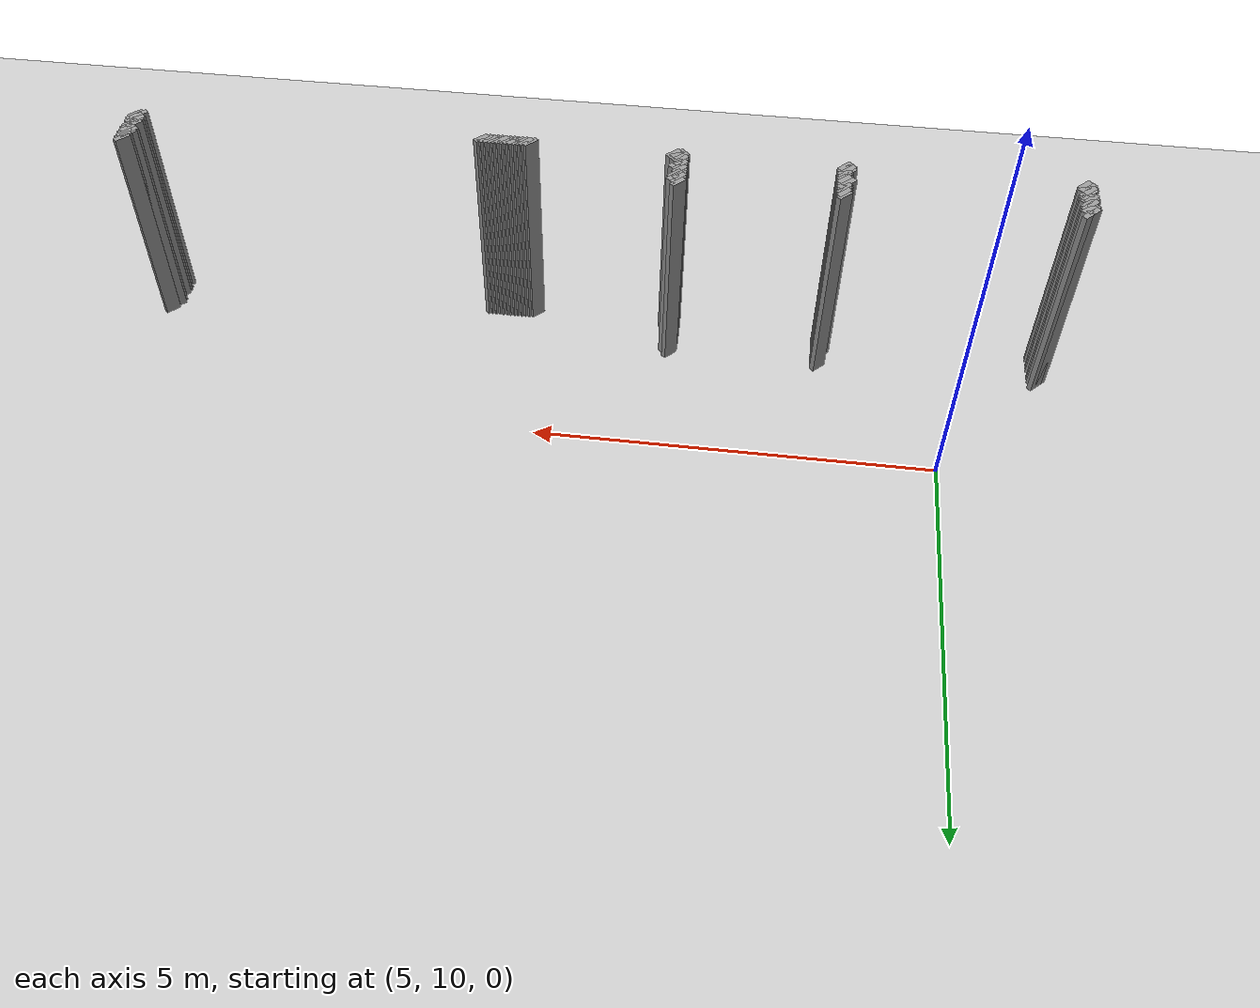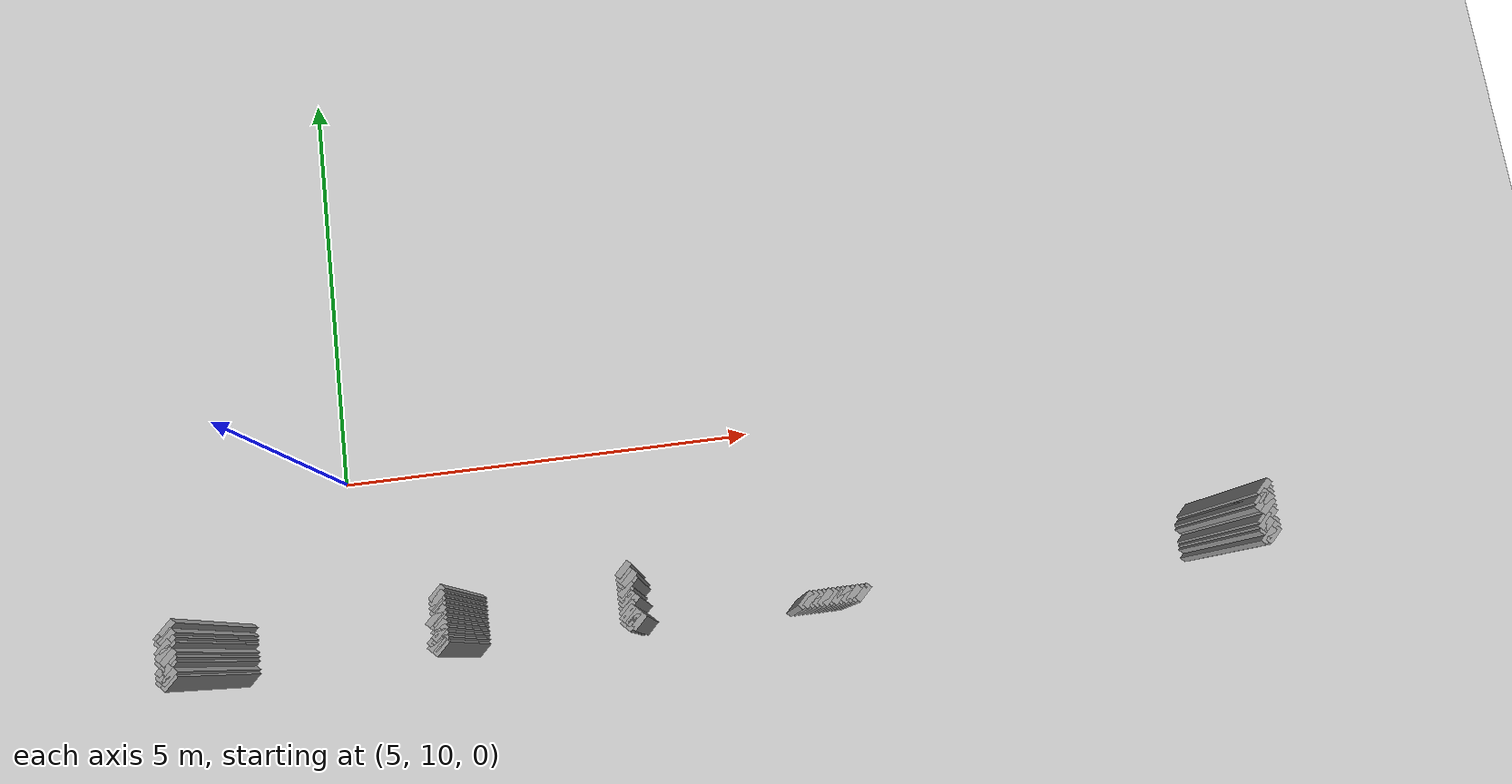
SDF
<sdf version="1.5">
 <world name="default">
  <include><uri>model://ground_plane</uri></include>
  <include><uri>model://sun</uri></include>
  <model name="grey_wall_1245">
   <static>1</static>
   <link name="link">
    <pose>3.7 8.35  1.4 0 0 -0.785398163397</pose>
    <collision name="collision"><geometry><box><size>0.0707106781187 .2  2.8</size></box></geometry></collision>
    <visual name="visual">
     <cast_shadows>0</cast_shadows>
     <geometry><box><size>0.0707106781187 .2  2.8</size></box></geometry>
     <material>
      <script>
       <uri>model://grey_wall/materials/scripts</uri>
       <uri>model://grey_wall/materials/textures</uri>
       <name>vrc/grey_wall</name>
      </script>
     </material>
    </visual>
   </link>
  </model>
  <model name="grey_wall_1246">
   <static>1</static>
   <link name="link">
    <pose>6.5 8.35  1.4 0 0 -0.785398163397</pose>
    <collision name="collision"><geometry><box><size>0.0707106781187 .2  2.8</size></box></geometry></collision>
    <visual name="visual">
     <cast_shadows>0</cast_shadows>
     <geometry><box><size>0.0707106781187 .2  2.8</size></box></geometry>
     <material>
      <script>
       <uri>model://grey_wall/materials/scripts</uri>
       <uri>model://grey_wall/materials/textures</uri>
       <name>vrc/grey_wall</name>
      </script>
     </material>
    </visual>
   </link>
  </model>
  <model name="grey_wall_1247">
   <static>1</static>
   <link name="link">
    <pose>8.45 8.35  1.4 0 0 -0.785398163397</pose>
    <collision name="collision"><geometry><box><size>0.0707106781187 .2  2.8</size></box></geometry></collision>
    <visual name="visual">
     <cast_shadows>0</cast_shadows>
     <geometry><box><size>0.0707106781187 .2  2.8</size></box></geometry>
     <material>
      <script>
       <uri>model://grey_wall/materials/scripts</uri>
       <uri>model://grey_wall/materials/textures</uri>
       <name>vrc/grey_wall</name>
      </script>
     </material>
    </visual>
   </link>
  </model>
  <model name="grey_wall_1248">
   <static>1</static>
   <link name="link">
    <pose>15.25 8.35  1.4 0 0 -0.785398163397</pose>
    <collision name="collision"><geometry><box><size>0.0707106781187 .2  2.8</size></box></geometry></collision>
    <visual name="visual">
     <cast_shadows>0</cast_shadows>
     <geometry><box><size>0.0707106781187 .2  2.8</size></box></geometry>
     <material>
      <script>
       <uri>model://grey_wall/materials/scripts</uri>
       <uri>model://grey_wall/materials/textures</uri>
       <name>vrc/grey_wall</name>
      </script>
     </material>
    </visual>
   </link>
  </model>
  <model name="grey_wall_1249">
   <static>1</static>
   <link name="link">
    <pose>3.65 8.3  1.4 0 0 -0.785398163397</pose>
    <collision name="collision"><geometry><box><size>0.0707106781187 .2  2.8</size></box></geometry></collision>
    <visual name="visual">
     <cast_shadows>0</cast_shadows>
     <geometry><box><size>0.0707106781187 .2  2.8</size></box></geometry>
     <material>
      <script>
       <uri>model://grey_wall/materials/scripts</uri>
       <uri>model://grey_wall/materials/textures</uri>
       <name>vrc/grey_wall</name>
      </script>
     </material>
    </visual>
   </link>
  </model>
  <model name="grey_wall_1250">
   <static>1</static>
   <link name="link">
    <pose>6.5 8.3  1.4 0 0 -0.785398163397</pose>
    <collision name="collision"><geometry><box><size>0.0707106781187 .2  2.8</size></box></geometry></collision>
    <visual name="visual">
     <cast_shadows>0</cast_shadows>
     <geometry><box><size>0.0707106781187 .2  2.8</size></box></geometry>
     <material>
      <script>
       <uri>model://grey_wall/materials/scripts</uri>
       <uri>model://grey_wall/materials/textures</uri>
       <name>vrc/grey_wall</name>
      </script>
     </material>
    </visual>
   </link>
  </model>
  <model name="grey_wall_1251">
   <static>1</static>
   <link name="link">
    <pose>8.45 8.3  1.4 0 0 -0.785398163397</pose>
    <collision name="collision"><geometry><box><size>0.0707106781187 .2  2.8</size></box></geometry></collision>
    <visual name="visual">
     <cast_shadows>0</cast_shadows>
     <geometry><box><size>0.0707106781187 .2  2.8</size></box></geometry>
     <material>
      <script>
       <uri>model://grey_wall/materials/scripts</uri>
       <uri>model://grey_wall/materials/textures</uri>
       <name>vrc/grey_wall</name>
      </script>
     </material>
    </visual>
   </link>
  </model>
  <model name="grey_wall_1252">
   <static>1</static>
   <link name="link">
    <pose>15.25 8.3  1.4 0 0 -0.785398163397</pose>
    <collision name="collision"><geometry><box><size>0.0707106781187 .2  2.8</size></box></geometry></collision>
    <visual name="visual">
     <cast_shadows>0</cast_shadows>
     <geometry><box><size>0.0707106781187 .2  2.8</size></box></geometry>
     <material>
      <script>
       <uri>model://grey_wall/materials/scripts</uri>
       <uri>model://grey_wall/materials/textures</uri>
       <name>vrc/grey_wall</name>
      </script>
     </material>
    </visual>
   </link>
  </model>
  <model name="grey_wall_1253">
   <static>1</static>
   <link name="link">
    <pose>3.65 8.25  1.4 0 0 -0.785398163397</pose>
    <collision name="collision"><geometry><box><size>0.0707106781187 .2  2.8</size></box></geometry></collision>
    <visual name="visual">
     <cast_shadows>0</cast_shadows>
     <geometry><box><size>0.0707106781187 .2  2.8</size></box></geometry>
     <material>
      <script>
       <uri>model://grey_wall/materials/scripts</uri>
       <uri>model://grey_wall/materials/textures</uri>
       <name>vrc/grey_wall</name>
      </script>
     </material>
    </visual>
   </link>
  </model>
  <model name="grey_wall_1254">
   <static>1</static>
   <link name="link">
    <pose>3.7 8.25  1.4 0 0 -0.785398163397</pose>
    <collision name="collision"><geometry><box><size>0.0707106781187 .2  2.8</size></box></geometry></collision>
    <visual name="visual">
     <cast_shadows>0</cast_shadows>
     <geometry><box><size>0.0707106781187 .2  2.8</size></box></geometry>
     <material>
      <script>
       <uri>model://grey_wall/materials/scripts</uri>
       <uri>model://grey_wall/materials/textures</uri>
       <name>vrc/grey_wall</name>
      </script>
     </material>
    </visual>
   </link>
  </model>
  <model name="grey_wall_1255">
   <static>1</static>
   <link name="link">
    <pose>6.5 8.25  1.4 0 0 -0.785398163397</pose>
    <collision name="collision"><geometry><box><size>0.0707106781187 .2  2.8</size></box></geometry></collision>
    <visual name="visual">
     <cast_shadows>0</cast_shadows>
     <geometry><box><size>0.0707106781187 .2  2.8</size></box></geometry>
     <material>
      <script>
       <uri>model://grey_wall/materials/scripts</uri>
       <uri>model://grey_wall/materials/textures</uri>
       <name>vrc/grey_wall</name>
      </script>
     </material>
    </visual>
   </link>
  </model>
  <model name="grey_wall_1256">
   <static>1</static>
   <link name="link">
    <pose>8.45 8.25  1.4 0 0 -0.785398163397</pose>
    <collision name="collision"><geometry><box><size>0.0707106781187 .2  2.8</size></box></geometry></collision>
    <visual name="visual">
     <cast_shadows>0</cast_shadows>
     <geometry><box><size>0.0707106781187 .2  2.8</size></box></geometry>
     <material>
      <script>
       <uri>model://grey_wall/materials/scripts</uri>
       <uri>model://grey_wall/materials/textures</uri>
       <name>vrc/grey_wall</name>
      </script>
     </material>
    </visual>
   </link>
  </model>
  <model name="grey_wall_1257">
   <static>1</static>
   <link name="link">
    <pose>8.5 8.25  1.4 0 0 -0.785398163397</pose>
    <collision name="collision"><geometry><box><size>0.0707106781187 .2  2.8</size></box></geometry></collision>
    <visual name="visual">
     <cast_shadows>0</cast_shadows>
     <geometry><box><size>0.0707106781187 .2  2.8</size></box></geometry>
     <material>
      <script>
       <uri>model://grey_wall/materials/scripts</uri>
       <uri>model://grey_wall/materials/textures</uri>
       <name>vrc/grey_wall</name>
      </script>
     </material>
    </visual>
   </link>
  </model>
  <model name="grey_wall_1258">
   <static>1</static>
   <link name="link">
    <pose>15.2 8.25  1.4 0 0 -0.785398163397</pose>
    <collision name="collision"><geometry><box><size>0.0707106781187 .2  2.8</size></box></geometry></collision>
    <visual name="visual">
     <cast_shadows>0</cast_shadows>
     <geometry><box><size>0.0707106781187 .2  2.8</size></box></geometry>
     <material>
      <script>
       <uri>model://grey_wall/materials/scripts</uri>
       <uri>model://grey_wall/materials/textures</uri>
       <name>vrc/grey_wall</name>
      </script>
     </material>
    </visual>
   </link>
  </model>
  <model name="grey_wall_1259">
   <static>1</static>
   <link name="link">
    <pose>15.25 8.25  1.4 0 0 -0.785398163397</pose>
    <collision name="collision"><geometry><box><size>0.0707106781187 .2  2.8</size></box></geometry></collision>
    <visual name="visual">
     <cast_shadows>0</cast_shadows>
     <geometry><box><size>0.0707106781187 .2  2.8</size></box></geometry>
     <material>
      <script>
       <uri>model://grey_wall/materials/scripts</uri>
       <uri>model://grey_wall/materials/textures</uri>
       <name>vrc/grey_wall</name>
      </script>
     </material>
    </visual>
   </link>
  </model>
  <model name="grey_wall_1260">
   <static>1</static>
   <link name="link">
    <pose>3.7 8.2  1.4 0 0 -0.785398163397</pose>
    <collision name="collision"><geometry><box><size>0.0707106781187 .2  2.8</size></box></geometry></collision>
    <visual name="visual">
     <cast_shadows>0</cast_shadows>
     <geometry><box><size>0.0707106781187 .2  2.8</size></box></geometry>
     <material>
      <script>
       <uri>model://grey_wall/materials/scripts</uri>
       <uri>model://grey_wall/materials/textures</uri>
       <name>vrc/grey_wall</name>
      </script>
     </material>
    </visual>
   </link>
  </model>
  <model name="grey_wall_1261">
   <static>1</static>
   <link name="link">
    <pose>6.5 8.2  1.4 0 0 -0.785398163397</pose>
    <collision name="collision"><geometry><box><size>0.0707106781187 .2  2.8</size></box></geometry></collision>
    <visual name="visual">
     <cast_shadows>0</cast_shadows>
     <geometry><box><size>0.0707106781187 .2  2.8</size></box></geometry>
     <material>
      <script>
       <uri>model://grey_wall/materials/scripts</uri>
       <uri>model://grey_wall/materials/textures</uri>
       <name>vrc/grey_wall</name>
      </script>
     </material>
    </visual>
   </link>
  </model>
  <model name="grey_wall_1262">
   <static>1</static>
   <link name="link">
    <pose>8.45 8.2  1.4 0 0 -0.785398163397</pose>
    <collision name="collision"><geometry><box><size>0.0707106781187 .2  2.8</size></box></geometry></collision>
    <visual name="visual">
     <cast_shadows>0</cast_shadows>
     <geometry><box><size>0.0707106781187 .2  2.8</size></box></geometry>
     <material>
      <script>
       <uri>model://grey_wall/materials/scripts</uri>
       <uri>model://grey_wall/materials/textures</uri>
       <name>vrc/grey_wall</name>
      </script>
     </material>
    </visual>
   </link>
  </model>
  <model name="grey_wall_1263">
   <static>1</static>
   <link name="link">
    <pose>8.5 8.2  1.4 0 0 -0.785398163397</pose>
    <collision name="collision"><geometry><box><size>0.0707106781187 .2  2.8</size></box></geometry></collision>
    <visual name="visual">
     <cast_shadows>0</cast_shadows>
     <geometry><box><size>0.0707106781187 .2  2.8</size></box></geometry>
     <material>
      <script>
       <uri>model://grey_wall/materials/scripts</uri>
       <uri>model://grey_wall/materials/textures</uri>
       <name>vrc/grey_wall</name>
      </script>
     </material>
    </visual>
   </link>
  </model>
  <model name="grey_wall_1264">
   <static>1</static>
   <link name="link">
    <pose>15.2 8.2  1.4 0 0 -0.785398163397</pose>
    <collision name="collision"><geometry><box><size>0.0707106781187 .2  2.8</size></box></geometry></collision>
    <visual name="visual">
     <cast_shadows>0</cast_shadows>
     <geometry><box><size>0.0707106781187 .2  2.8</size></box></geometry>
     <material>
      <script>
       <uri>model://grey_wall/materials/scripts</uri>
       <uri>model://grey_wall/materials/textures</uri>
       <name>vrc/grey_wall</name>
      </script>
     </material>
    </visual>
   </link>
  </model>
  <model name="grey_wall_1265">
   <static>1</static>
   <link name="link">
    <pose>15.25 8.2  1.4 0 0 -0.785398163397</pose>
    <collision name="collision"><geometry><box><size>0.0707106781187 .2  2.8</size></box></geometry></collision>
    <visual name="visual">
     <cast_shadows>0</cast_shadows>
     <geometry><box><size>0.0707106781187 .2  2.8</size></box></geometry>
     <material>
      <script>
       <uri>model://grey_wall/materials/scripts</uri>
       <uri>model://grey_wall/materials/textures</uri>
       <name>vrc/grey_wall</name>
      </script>
     </material>
    </visual>
   </link>
  </model>
  <model name="grey_wall_1266">
   <static>1</static>
   <link name="link">
    <pose>3.65 8.15  1.4 0 0 -0.785398163397</pose>
    <collision name="collision"><geometry><box><size>0.0707106781187 .2  2.8</size></box></geometry></collision>
    <visual name="visual">
     <cast_shadows>0</cast_shadows>
     <geometry><box><size>0.0707106781187 .2  2.8</size></box></geometry>
     <material>
      <script>
       <uri>model://grey_wall/materials/scripts</uri>
       <uri>model://grey_wall/materials/textures</uri>
       <name>vrc/grey_wall</name>
      </script>
     </material>
    </visual>
   </link>
  </model>
  <model name="grey_wall_1267">
   <static>1</static>
   <link name="link">
    <pose>3.7 8.15  1.4 0 0 -0.785398163397</pose>
    <collision name="collision"><geometry><box><size>0.0707106781187 .2  2.8</size></box></geometry></collision>
    <visual name="visual">
     <cast_shadows>0</cast_shadows>
     <geometry><box><size>0.0707106781187 .2  2.8</size></box></geometry>
     <material>
      <script>
       <uri>model://grey_wall/materials/scripts</uri>
       <uri>model://grey_wall/materials/textures</uri>
       <name>vrc/grey_wall</name>
      </script>
     </material>
    </visual>
   </link>
  </model>
  <model name="grey_wall_1268">
   <static>1</static>
   <link name="link">
    <pose>6.5 8.15  1.4 0 0 -0.785398163397</pose>
    <collision name="collision"><geometry><box><size>0.0707106781187 .2  2.8</size></box></geometry></collision>
    <visual name="visual">
     <cast_shadows>0</cast_shadows>
     <geometry><box><size>0.0707106781187 .2  2.8</size></box></geometry>
     <material>
      <script>
       <uri>model://grey_wall/materials/scripts</uri>
       <uri>model://grey_wall/materials/textures</uri>
       <name>vrc/grey_wall</name>
      </script>
     </material>
    </visual>
   </link>
  </model>
  <model name="grey_wall_1269">
   <static>1</static>
   <link name="link">
    <pose>8.45 8.15  1.4 0 0 -0.785398163397</pose>
    <collision name="collision"><geometry><box><size>0.0707106781187 .2  2.8</size></box></geometry></collision>
    <visual name="visual">
     <cast_shadows>0</cast_shadows>
     <geometry><box><size>0.0707106781187 .2  2.8</size></box></geometry>
     <material>
      <script>
       <uri>model://grey_wall/materials/scripts</uri>
       <uri>model://grey_wall/materials/textures</uri>
       <name>vrc/grey_wall</name>
      </script>
     </material>
    </visual>
   </link>
  </model>
  <model name="grey_wall_1270">
   <static>1</static>
   <link name="link">
    <pose>15.25 8.15  1.4 0 0 -0.785398163397</pose>
    <collision name="collision"><geometry><box><size>0.0707106781187 .2  2.8</size></box></geometry></collision>
    <visual name="visual">
     <cast_shadows>0</cast_shadows>
     <geometry><box><size>0.0707106781187 .2  2.8</size></box></geometry>
     <material>
      <script>
       <uri>model://grey_wall/materials/scripts</uri>
       <uri>model://grey_wall/materials/textures</uri>
       <name>vrc/grey_wall</name>
      </script>
     </material>
    </visual>
   </link>
  </model>
  <model name="grey_wall_1271">
   <static>1</static>
   <link name="link">
    <pose>3.65 8.1  1.4 0 0 -0.785398163397</pose>
    <collision name="collision"><geometry><box><size>0.0707106781187 .2  2.8</size></box></geometry></collision>
    <visual name="visual">
     <cast_shadows>0</cast_shadows>
     <geometry><box><size>0.0707106781187 .2  2.8</size></box></geometry>
     <material>
      <script>
       <uri>model://grey_wall/materials/scripts</uri>
       <uri>model://grey_wall/materials/textures</uri>
       <name>vrc/grey_wall</name>
      </script>
     </material>
    </visual>
   </link>
  </model>
  <model name="grey_wall_1272">
   <static>1</static>
   <link name="link">
    <pose>6.45 8.1  1.4 0 0 -0.785398163397</pose>
    <collision name="collision"><geometry><box><size>0.0707106781187 .2  2.8</size></box></geometry></collision>
    <visual name="visual">
     <cast_shadows>0</cast_shadows>
     <geometry><box><size>0.0707106781187 .2  2.8</size></box></geometry>
     <material>
      <script>
       <uri>model://grey_wall/materials/scripts</uri>
       <uri>model://grey_wall/materials/textures</uri>
       <name>vrc/grey_wall</name>
      </script>
     </material>
    </visual>
   </link>
  </model>
  <model name="grey_wall_1273">
   <static>1</static>
   <link name="link">
    <pose>6.5 8.1  1.4 0 0 -0.785398163397</pose>
    <collision name="collision"><geometry><box><size>0.0707106781187 .2  2.8</size></box></geometry></collision>
    <visual name="visual">
     <cast_shadows>0</cast_shadows>
     <geometry><box><size>0.0707106781187 .2  2.8</size></box></geometry>
     <material>
      <script>
       <uri>model://grey_wall/materials/scripts</uri>
       <uri>model://grey_wall/materials/textures</uri>
       <name>vrc/grey_wall</name>
      </script>
     </material>
    </visual>
   </link>
  </model>
  <model name="grey_wall_1274">
   <static>1</static>
   <link name="link">
    <pose>8.45 8.1  1.4 0 0 -0.785398163397</pose>
    <collision name="collision"><geometry><box><size>0.0707106781187 .2  2.8</size></box></geometry></collision>
    <visual name="visual">
     <cast_shadows>0</cast_shadows>
     <geometry><box><size>0.0707106781187 .2  2.8</size></box></geometry>
     <material>
      <script>
       <uri>model://grey_wall/materials/scripts</uri>
       <uri>model://grey_wall/materials/textures</uri>
       <name>vrc/grey_wall</name>
      </script>
     </material>
    </visual>
   </link>
  </model>
  <model name="grey_wall_1275">
   <static>1</static>
   <link name="link">
    <pose>15.25 8.1  1.4 0 0 -0.785398163397</pose>
    <collision name="collision"><geometry><box><size>0.0707106781187 .2  2.8</size></box></geometry></collision>
    <visual name="visual">
     <cast_shadows>0</cast_shadows>
     <geometry><box><size>0.0707106781187 .2  2.8</size></box></geometry>
     <material>
      <script>
       <uri>model://grey_wall/materials/scripts</uri>
       <uri>model://grey_wall/materials/textures</uri>
       <name>vrc/grey_wall</name>
      </script>
     </material>
    </visual>
   </link>
  </model>
  <model name="grey_wall_1276">
   <static>1</static>
   <link name="link">
    <pose>3.65 8.05  1.4 0 0 -0.785398163397</pose>
    <collision name="collision"><geometry><box><size>0.0707106781187 .2  2.8</size></box></geometry></collision>
    <visual name="visual">
     <cast_shadows>0</cast_shadows>
     <geometry><box><size>0.0707106781187 .2  2.8</size></box></geometry>
     <material>
      <script>
       <uri>model://grey_wall/materials/scripts</uri>
       <uri>model://grey_wall/materials/textures</uri>
       <name>vrc/grey_wall</name>
      </script>
     </material>
    </visual>
   </link>
  </model>
  <model name="grey_wall_1277">
   <static>1</static>
   <link name="link">
    <pose>3.7 8.05  1.4 0 0 -0.785398163397</pose>
    <collision name="collision"><geometry><box><size>0.0707106781187 .2  2.8</size></box></geometry></collision>
    <visual name="visual">
     <cast_shadows>0</cast_shadows>
     <geometry><box><size>0.0707106781187 .2  2.8</size></box></geometry>
     <material>
      <script>
       <uri>model://grey_wall/materials/scripts</uri>
       <uri>model://grey_wall/materials/textures</uri>
       <name>vrc/grey_wall</name>
      </script>
     </material>
    </visual>
   </link>
  </model>
  <model name="grey_wall_1278">
   <static>1</static>
   <link name="link">
    <pose>6.5 8.05  1.4 0 0 -0.785398163397</pose>
    <collision name="collision"><geometry><box><size>0.0707106781187 .2  2.8</size></box></geometry></collision>
    <visual name="visual">
     <cast_shadows>0</cast_shadows>
     <geometry><box><size>0.0707106781187 .2  2.8</size></box></geometry>
     <material>
      <script>
       <uri>model://grey_wall/materials/scripts</uri>
       <uri>model://grey_wall/materials/textures</uri>
       <name>vrc/grey_wall</name>
      </script>
     </material>
    </visual>
   </link>
  </model>
  <model name="grey_wall_1279">
   <static>1</static>
   <link name="link">
    <pose>8.45 8.05  1.4 0 0 -0.785398163397</pose>
    <collision name="collision"><geometry><box><size>0.0707106781187 .2  2.8</size></box></geometry></collision>
    <visual name="visual">
     <cast_shadows>0</cast_shadows>
     <geometry><box><size>0.0707106781187 .2  2.8</size></box></geometry>
     <material>
      <script>
       <uri>model://grey_wall/materials/scripts</uri>
       <uri>model://grey_wall/materials/textures</uri>
       <name>vrc/grey_wall</name>
      </script>
     </material>
    </visual>
   </link>
  </model>
  <model name="grey_wall_1280">
   <static>1</static>
   <link name="link">
    <pose>15.2 8.05  1.4 0 0 -0.785398163397</pose>
    <collision name="collision"><geometry><box><size>0.0707106781187 .2  2.8</size></box></geometry></collision>
    <visual name="visual">
     <cast_shadows>0</cast_shadows>
     <geometry><box><size>0.0707106781187 .2  2.8</size></box></geometry>
     <material>
      <script>
       <uri>model://grey_wall/materials/scripts</uri>
       <uri>model://grey_wall/materials/textures</uri>
       <name>vrc/grey_wall</name>
      </script>
     </material>
    </visual>
   </link>
  </model>
  <model name="grey_wall_1281">
   <static>1</static>
   <link name="link">
    <pose>15.25 8.05  1.4 0 0 -0.785398163397</pose>
    <collision name="collision"><geometry><box><size>0.0707106781187 .2  2.8</size></box></geometry></collision>
    <visual name="visual">
     <cast_shadows>0</cast_shadows>
     <geometry><box><size>0.0707106781187 .2  2.8</size></box></geometry>
     <material>
      <script>
       <uri>model://grey_wall/materials/scripts</uri>
       <uri>model://grey_wall/materials/textures</uri>
       <name>vrc/grey_wall</name>
      </script>
     </material>
    </visual>
   </link>
  </model>
  <model name="grey_wall_1282">
   <static>1</static>
   <link name="link">
    <pose>3.7 8.0  1.4 0 0 -0.785398163397</pose>
    <collision name="collision"><geometry><box><size>0.0707106781187 .2  2.8</size></box></geometry></collision>
    <visual name="visual">
     <cast_shadows>0</cast_shadows>
     <geometry><box><size>0.0707106781187 .2  2.8</size></box></geometry>
     <material>
      <script>
       <uri>model://grey_wall/materials/scripts</uri>
       <uri>model://grey_wall/materials/textures</uri>
       <name>vrc/grey_wall</name>
      </script>
     </material>
    </visual>
   </link>
  </model>
  <model name="grey_wall_1283">
   <static>1</static>
   <link name="link">
    <pose>6.5 8.0  1.4 0 0 -0.785398163397</pose>
    <collision name="collision"><geometry><box><size>0.0707106781187 .2  2.8</size></box></geometry></collision>
    <visual name="visual">
     <cast_shadows>0</cast_shadows>
     <geometry><box><size>0.0707106781187 .2  2.8</size></box></geometry>
     <material>
      <script>
       <uri>model://grey_wall/materials/scripts</uri>
       <uri>model://grey_wall/materials/textures</uri>
       <name>vrc/grey_wall</name>
      </script>
     </material>
    </visual>
   </link>
  </model>
  <model name="grey_wall_1284">
   <static>1</static>
   <link name="link">
    <pose>8.45 8.0  1.4 0 0 -0.785398163397</pose>
    <collision name="collision"><geometry><box><size>0.0707106781187 .2  2.8</size></box></geometry></collision>
    <visual name="visual">
     <cast_shadows>0</cast_shadows>
     <geometry><box><size>0.0707106781187 .2  2.8</size></box></geometry>
     <material>
      <script>
       <uri>model://grey_wall/materials/scripts</uri>
       <uri>model://grey_wall/materials/textures</uri>
       <name>vrc/grey_wall</name>
      </script>
     </material>
    </visual>
   </link>
  </model>
  <model name="grey_wall_1285">
   <static>1</static>
   <link name="link">
    <pose>8.5 8.0  1.4 0 0 -0.785398163397</pose>
    <collision name="collision"><geometry><box><size>0.0707106781187 .2  2.8</size></box></geometry></collision>
    <visual name="visual">
     <cast_shadows>0</cast_shadows>
     <geometry><box><size>0.0707106781187 .2  2.8</size></box></geometry>
     <material>
      <script>
       <uri>model://grey_wall/materials/scripts</uri>
       <uri>model://grey_wall/materials/textures</uri>
       <name>vrc/grey_wall</name>
      </script>
     </material>
    </visual>
   </link>
  </model>
  <model name="grey_wall_1286">
   <static>1</static>
   <link name="link">
    <pose>15.2 8.0  1.4 0 0 -0.785398163397</pose>
    <collision name="collision"><geometry><box><size>0.0707106781187 .2  2.8</size></box></geometry></collision>
    <visual name="visual">
     <cast_shadows>0</cast_shadows>
     <geometry><box><size>0.0707106781187 .2  2.8</size></box></geometry>
     <material>
      <script>
       <uri>model://grey_wall/materials/scripts</uri>
       <uri>model://grey_wall/materials/textures</uri>
       <name>vrc/grey_wall</name>
      </script>
     </material>
    </visual>
   </link>
  </model>
  <model name="grey_wall_1287">
   <static>1</static>
   <link name="link">
    <pose>3.65 7.95  1.4 0 0 -0.785398163397</pose>
    <collision name="collision"><geometry><box><size>0.0707106781187 .2  2.8</size></box></geometry></collision>
    <visual name="visual">
     <cast_shadows>0</cast_shadows>
     <geometry><box><size>0.0707106781187 .2  2.8</size></box></geometry>
     <material>
      <script>
       <uri>model://grey_wall/materials/scripts</uri>
       <uri>model://grey_wall/materials/textures</uri>
       <name>vrc/grey_wall</name>
      </script>
     </material>
    </visual>
   </link>
  </model>
  <model name="grey_wall_1288">
   <static>1</static>
   <link name="link">
    <pose>3.7 7.95  1.4 0 0 -0.785398163397</pose>
    <collision name="collision"><geometry><box><size>0.0707106781187 .2  2.8</size></box></geometry></collision>
    <visual name="visual">
     <cast_shadows>0</cast_shadows>
     <geometry><box><size>0.0707106781187 .2  2.8</size></box></geometry>
     <material>
      <script>
       <uri>model://grey_wall/materials/scripts</uri>
       <uri>model://grey_wall/materials/textures</uri>
       <name>vrc/grey_wall</name>
      </script>
     </material>
    </visual>
   </link>
  </model>
  <model name="grey_wall_1289">
   <static>1</static>
   <link name="link">
    <pose>6.5 7.95  1.4 0 0 -0.785398163397</pose>
    <collision name="collision"><geometry><box><size>0.0707106781187 .2  2.8</size></box></geometry></collision>
    <visual name="visual">
     <cast_shadows>0</cast_shadows>
     <geometry><box><size>0.0707106781187 .2  2.8</size></box></geometry>
     <material>
      <script>
       <uri>model://grey_wall/materials/scripts</uri>
       <uri>model://grey_wall/materials/textures</uri>
       <name>vrc/grey_wall</name>
      </script>
     </material>
    </visual>
   </link>
  </model>
  <model name="grey_wall_1290">
   <static>1</static>
   <link name="link">
    <pose>8.45 7.95  1.4 0 0 -0.785398163397</pose>
    <collision name="collision"><geometry><box><size>0.0707106781187 .2  2.8</size></box></geometry></collision>
    <visual name="visual">
     <cast_shadows>0</cast_shadows>
     <geometry><box><size>0.0707106781187 .2  2.8</size></box></geometry>
     <material>
      <script>
       <uri>model://grey_wall/materials/scripts</uri>
       <uri>model://grey_wall/materials/textures</uri>
       <name>vrc/grey_wall</name>
      </script>
     </material>
    </visual>
   </link>
  </model>
  <model name="grey_wall_1291">
   <static>1</static>
   <link name="link">
    <pose>15.2 7.95  1.4 0 0 -0.785398163397</pose>
    <collision name="collision"><geometry><box><size>0.0707106781187 .2  2.8</size></box></geometry></collision>
    <visual name="visual">
     <cast_shadows>0</cast_shadows>
     <geometry><box><size>0.0707106781187 .2  2.8</size></box></geometry>
     <material>
      <script>
       <uri>model://grey_wall/materials/scripts</uri>
       <uri>model://grey_wall/materials/textures</uri>
       <name>vrc/grey_wall</name>
      </script>
     </material>
    </visual>
   </link>
  </model>
  <model name="grey_wall_1292">
   <static>1</static>
   <link name="link">
    <pose>15.25 7.95  1.4 0 0 -0.785398163397</pose>
    <collision name="collision"><geometry><box><size>0.0707106781187 .2  2.8</size></box></geometry></collision>
    <visual name="visual">
     <cast_shadows>0</cast_shadows>
     <geometry><box><size>0.0707106781187 .2  2.8</size></box></geometry>
     <material>
      <script>
       <uri>model://grey_wall/materials/scripts</uri>
       <uri>model://grey_wall/materials/textures</uri>
       <name>vrc/grey_wall</name>
      </script>
     </material>
    </visual>
   </link>
  </model>
  <model name="grey_wall_1293">
   <static>1</static>
   <link name="link">
    <pose>3.65 7.9  1.4 0 0 -0.785398163397</pose>
    <collision name="collision"><geometry><box><size>0.0707106781187 .2  2.8</size></box></geometry></collision>
    <visual name="visual">
     <cast_shadows>0</cast_shadows>
     <geometry><box><size>0.0707106781187 .2  2.8</size></box></geometry>
     <material>
      <script>
       <uri>model://grey_wall/materials/scripts</uri>
       <uri>model://grey_wall/materials/textures</uri>
       <name>vrc/grey_wall</name>
      </script>
     </material>
    </visual>
   </link>
  </model>
  <model name="grey_wall_1294">
   <static>1</static>
   <link name="link">
    <pose>6.45 7.9  1.4 0 0 -0.785398163397</pose>
    <collision name="collision"><geometry><box><size>0.0707106781187 .2  2.8</size></box></geometry></collision>
    <visual name="visual">
     <cast_shadows>0</cast_shadows>
     <geometry><box><size>0.0707106781187 .2  2.8</size></box></geometry>
     <material>
      <script>
       <uri>model://grey_wall/materials/scripts</uri>
       <uri>model://grey_wall/materials/textures</uri>
       <name>vrc/grey_wall</name>
      </script>
     </material>
    </visual>
   </link>
  </model>
  <model name="grey_wall_1295">
   <static>1</static>
   <link name="link">
    <pose>6.5 7.9  1.4 0 0 -0.785398163397</pose>
    <collision name="collision"><geometry><box><size>0.0707106781187 .2  2.8</size></box></geometry></collision>
    <visual name="visual">
     <cast_shadows>0</cast_shadows>
     <geometry><box><size>0.0707106781187 .2  2.8</size></box></geometry>
     <material>
      <script>
       <uri>model://grey_wall/materials/scripts</uri>
       <uri>model://grey_wall/materials/textures</uri>
       <name>vrc/grey_wall</name>
      </script>
     </material>
    </visual>
   </link>
  </model>
  <model name="grey_wall_1296">
   <static>1</static>
   <link name="link">
    <pose>8.45 7.9  1.4 0 0 -0.785398163397</pose>
    <collision name="collision"><geometry><box><size>0.0707106781187 .2  2.8</size></box></geometry></collision>
    <visual name="visual">
     <cast_shadows>0</cast_shadows>
     <geometry><box><size>0.0707106781187 .2  2.8</size></box></geometry>
     <material>
      <script>
       <uri>model://grey_wall/materials/scripts</uri>
       <uri>model://grey_wall/materials/textures</uri>
       <name>vrc/grey_wall</name>
      </script>
     </material>
    </visual>
   </link>
  </model>
  <model name="grey_wall_1297">
   <static>1</static>
   <link name="link">
    <pose>15.25 7.9  1.4 0 0 -0.785398163397</pose>
    <collision name="collision"><geometry><box><size>0.0707106781187 .2  2.8</size></box></geometry></collision>
    <visual name="visual">
     <cast_shadows>0</cast_shadows>
     <geometry><box><size>0.0707106781187 .2  2.8</size></box></geometry>
     <material>
      <script>
       <uri>model://grey_wall/materials/scripts</uri>
       <uri>model://grey_wall/materials/textures</uri>
       <name>vrc/grey_wall</name>
      </script>
     </material>
    </visual>
   </link>
  </model>
  <model name="grey_wall_1298">
   <static>1</static>
   <link name="link">
    <pose>3.65 7.85  1.4 0 0 -0.785398163397</pose>
    <collision name="collision"><geometry><box><size>0.0707106781187 .2  2.8</size></box></geometry></collision>
    <visual name="visual">
     <cast_shadows>0</cast_shadows>
     <geometry><box><size>0.0707106781187 .2  2.8</size></box></geometry>
     <material>
      <script>
       <uri>model://grey_wall/materials/scripts</uri>
       <uri>model://grey_wall/materials/textures</uri>
       <name>vrc/grey_wall</name>
      </script>
     </material>
    </visual>
   </link>
  </model>
  <model name="grey_wall_1299">
   <static>1</static>
   <link name="link">
    <pose>3.7 7.85  1.4 0 0 -0.785398163397</pose>
    <collision name="collision"><geometry><box><size>0.0707106781187 .2  2.8</size></box></geometry></collision>
    <visual name="visual">
     <cast_shadows>0</cast_shadows>
     <geometry><box><size>0.0707106781187 .2  2.8</size></box></geometry>
     <material>
      <script>
       <uri>model://grey_wall/materials/scripts</uri>
       <uri>model://grey_wall/materials/textures</uri>
       <name>vrc/grey_wall</name>
      </script>
     </material>
    </visual>
   </link>
  </model>
  <model name="grey_wall_1300">
   <static>1</static>
   <link name="link">
    <pose>6.45 7.85  1.4 0 0 -0.785398163397</pose>
    <collision name="collision"><geometry><box><size>0.0707106781187 .2  2.8</size></box></geometry></collision>
    <visual name="visual">
     <cast_shadows>0</cast_shadows>
     <geometry><box><size>0.0707106781187 .2  2.8</size></box></geometry>
     <material>
      <script>
       <uri>model://grey_wall/materials/scripts</uri>
       <uri>model://grey_wall/materials/textures</uri>
       <name>vrc/grey_wall</name>
      </script>
     </material>
    </visual>
   </link>
  </model>
  <model name="grey_wall_1301">
   <static>1</static>
   <link name="link">
    <pose>6.5 7.85  1.4 0 0 -0.785398163397</pose>
    <collision name="collision"><geometry><box><size>0.0707106781187 .2  2.8</size></box></geometry></collision>
    <visual name="visual">
     <cast_shadows>0</cast_shadows>
     <geometry><box><size>0.0707106781187 .2  2.8</size></box></geometry>
     <material>
      <script>
       <uri>model://grey_wall/materials/scripts</uri>
       <uri>model://grey_wall/materials/textures</uri>
       <name>vrc/grey_wall</name>
      </script>
     </material>
    </visual>
   </link>
  </model>
  <model name="grey_wall_1302">
   <static>1</static>
   <link name="link">
    <pose>8.45 7.85  1.4 0 0 -0.785398163397</pose>
    <collision name="collision"><geometry><box><size>0.0707106781187 .2  2.8</size></box></geometry></collision>
    <visual name="visual">
     <cast_shadows>0</cast_shadows>
     <geometry><box><size>0.0707106781187 .2  2.8</size></box></geometry>
     <material>
      <script>
       <uri>model://grey_wall/materials/scripts</uri>
       <uri>model://grey_wall/materials/textures</uri>
       <name>vrc/grey_wall</name>
      </script>
     </material>
    </visual>
   </link>
  </model>
  <model name="grey_wall_1303">
   <static>1</static>
   <link name="link">
    <pose>8.5 7.85  1.4 0 0 -0.785398163397</pose>
    <collision name="collision"><geometry><box><size>0.0707106781187 .2  2.8</size></box></geometry></collision>
    <visual name="visual">
     <cast_shadows>0</cast_shadows>
     <geometry><box><size>0.0707106781187 .2  2.8</size></box></geometry>
     <material>
      <script>
       <uri>model://grey_wall/materials/scripts</uri>
       <uri>model://grey_wall/materials/textures</uri>
       <name>vrc/grey_wall</name>
      </script>
     </material>
    </visual>
   </link>
  </model>
  <model name="grey_wall_1304">
   <static>1</static>
   <link name="link">
    <pose>15.2 7.85  1.4 0 0 -0.785398163397</pose>
    <collision name="collision"><geometry><box><size>0.0707106781187 .2  2.8</size></box></geometry></collision>
    <visual name="visual">
     <cast_shadows>0</cast_shadows>
     <geometry><box><size>0.0707106781187 .2  2.8</size></box></geometry>
     <material>
      <script>
       <uri>model://grey_wall/materials/scripts</uri>
       <uri>model://grey_wall/materials/textures</uri>
       <name>vrc/grey_wall</name>
      </script>
     </material>
    </visual>
   </link>
  </model>
  <model name="grey_wall_1305">
   <static>1</static>
   <link name="link">
    <pose>15.25 7.85  1.4 0 0 -0.785398163397</pose>
    <collision name="collision"><geometry><box><size>0.0707106781187 .2  2.8</size></box></geometry></collision>
    <visual name="visual">
     <cast_shadows>0</cast_shadows>
     <geometry><box><size>0.0707106781187 .2  2.8</size></box></geometry>
     <material>
      <script>
       <uri>model://grey_wall/materials/scripts</uri>
       <uri>model://grey_wall/materials/textures</uri>
       <name>vrc/grey_wall</name>
      </script>
     </material>
    </visual>
   </link>
  </model>
  <model name="grey_wall_1306">
   <static>1</static>
   <link name="link">
    <pose>3.7 7.8  1.4 0 0 -0.785398163397</pose>
    <collision name="collision"><geometry><box><size>0.0707106781187 .2  2.8</size></box></geometry></collision>
    <visual name="visual">
     <cast_shadows>0</cast_shadows>
     <geometry><box><size>0.0707106781187 .2  2.8</size></box></geometry>
     <material>
      <script>
       <uri>model://grey_wall/materials/scripts</uri>
       <uri>model://grey_wall/materials/textures</uri>
       <name>vrc/grey_wall</name>
      </script>
     </material>
    </visual>
   </link>
  </model>
  <model name="grey_wall_1307">
   <static>1</static>
   <link name="link">
    <pose>6.5 7.8  1.4 0 0 -0.785398163397</pose>
    <collision name="collision"><geometry><box><size>0.0707106781187 .2  2.8</size></box></geometry></collision>
    <visual name="visual">
     <cast_shadows>0</cast_shadows>
     <geometry><box><size>0.0707106781187 .2  2.8</size></box></geometry>
     <material>
      <script>
       <uri>model://grey_wall/materials/scripts</uri>
       <uri>model://grey_wall/materials/textures</uri>
       <name>vrc/grey_wall</name>
      </script>
     </material>
    </visual>
   </link>
  </model>
  <model name="grey_wall_1308">
   <static>1</static>
   <link name="link">
    <pose>8.5 7.8  1.4 0 0 -0.785398163397</pose>
    <collision name="collision"><geometry><box><size>0.0707106781187 .2  2.8</size></box></geometry></collision>
    <visual name="visual">
     <cast_shadows>0</cast_shadows>
     <geometry><box><size>0.0707106781187 .2  2.8</size></box></geometry>
     <material>
      <script>
       <uri>model://grey_wall/materials/scripts</uri>
       <uri>model://grey_wall/materials/textures</uri>
       <name>vrc/grey_wall</name>
      </script>
     </material>
    </visual>
   </link>
  </model>
  <model name="grey_wall_1309">
   <static>1</static>
   <link name="link">
    <pose>8.55 7.8  1.4 0 0 -0.785398163397</pose>
    <collision name="collision"><geometry><box><size>0.0707106781187 .2  2.8</size></box></geometry></collision>
    <visual name="visual">
     <cast_shadows>0</cast_shadows>
     <geometry><box><size>0.0707106781187 .2  2.8</size></box></geometry>
     <material>
      <script>
       <uri>model://grey_wall/materials/scripts</uri>
       <uri>model://grey_wall/materials/textures</uri>
       <name>vrc/grey_wall</name>
      </script>
     </material>
    </visual>
   </link>
  </model>
  <model name="grey_wall_1310">
   <static>1</static>
   <link name="link">
    <pose>10.3 7.8  1.4 0 0 -0.785398163397</pose>
    <collision name="collision"><geometry><box><size>0.0707106781187 .2  2.8</size></box></geometry></collision>
    <visual name="visual">
     <cast_shadows>0</cast_shadows>
     <geometry><box><size>0.0707106781187 .2  2.8</size></box></geometry>
     <material>
      <script>
       <uri>model://grey_wall/materials/scripts</uri>
       <uri>model://grey_wall/materials/textures</uri>
       <name>vrc/grey_wall</name>
      </script>
     </material>
    </visual>
   </link>
  </model>
  <model name="grey_wall_1311">
   <static>1</static>
   <link name="link">
    <pose>10.35 7.8  1.4 0 0 -0.785398163397</pose>
    <collision name="collision"><geometry><box><size>0.0707106781187 .2  2.8</size></box></geometry></collision>
    <visual name="visual">
     <cast_shadows>0</cast_shadows>
     <geometry><box><size>0.0707106781187 .2  2.8</size></box></geometry>
     <material>
      <script>
       <uri>model://grey_wall/materials/scripts</uri>
       <uri>model://grey_wall/materials/textures</uri>
       <name>vrc/grey_wall</name>
      </script>
     </material>
    </visual>
   </link>
  </model>
  <model name="grey_wall_1312">
   <static>1</static>
   <link name="link">
    <pose>10.4 7.8  1.4 0 0 -0.785398163397</pose>
    <collision name="collision"><geometry><box><size>0.0707106781187 .2  2.8</size></box></geometry></collision>
    <visual name="visual">
     <cast_shadows>0</cast_shadows>
     <geometry><box><size>0.0707106781187 .2  2.8</size></box></geometry>
     <material>
      <script>
       <uri>model://grey_wall/materials/scripts</uri>
       <uri>model://grey_wall/materials/textures</uri>
       <name>vrc/grey_wall</name>
      </script>
     </material>
    </visual>
   </link>
  </model>
  <model name="grey_wall_1313">
   <static>1</static>
   <link name="link">
    <pose>10.45 7.8  1.4 0 0 -0.785398163397</pose>
    <collision name="collision"><geometry><box><size>0.0707106781187 .2  2.8</size></box></geometry></collision>
    <visual name="visual">
     <cast_shadows>0</cast_shadows>
     <geometry><box><size>0.0707106781187 .2  2.8</size></box></geometry>
     <material>
      <script>
       <uri>model://grey_wall/materials/scripts</uri>
       <uri>model://grey_wall/materials/textures</uri>
       <name>vrc/grey_wall</name>
      </script>
     </material>
    </visual>
   </link>
  </model>
  <model name="grey_wall_1314">
   <static>1</static>
   <link name="link">
    <pose>10.5 7.8  1.4 0 0 -0.785398163397</pose>
    <collision name="collision"><geometry><box><size>0.0707106781187 .2  2.8</size></box></geometry></collision>
    <visual name="visual">
     <cast_shadows>0</cast_shadows>
     <geometry><box><size>0.0707106781187 .2  2.8</size></box></geometry>
     <material>
      <script>
       <uri>model://grey_wall/materials/scripts</uri>
       <uri>model://grey_wall/materials/textures</uri>
       <name>vrc/grey_wall</name>
      </script>
     </material>
    </visual>
   </link>
  </model>
  <model name="grey_wall_1315">
   <static>1</static>
   <link name="link">
    <pose>10.55 7.8  1.4 0 0 -0.785398163397</pose>
    <collision name="collision"><geometry><box><size>0.0707106781187 .2  2.8</size></box></geometry></collision>
    <visual name="visual">
     <cast_shadows>0</cast_shadows>
     <geometry><box><size>0.0707106781187 .2  2.8</size></box></geometry>
     <material>
      <script>
       <uri>model://grey_wall/materials/scripts</uri>
       <uri>model://grey_wall/materials/textures</uri>
       <name>vrc/grey_wall</name>
      </script>
     </material>
    </visual>
   </link>
  </model>
  <model name="grey_wall_1316">
   <static>1</static>
   <link name="link">
    <pose>10.6 7.8  1.4 0 0 -0.785398163397</pose>
    <collision name="collision"><geometry><box><size>0.0707106781187 .2  2.8</size></box></geometry></collision>
    <visual name="visual">
     <cast_shadows>0</cast_shadows>
     <geometry><box><size>0.0707106781187 .2  2.8</size></box></geometry>
     <material>
      <script>
       <uri>model://grey_wall/materials/scripts</uri>
       <uri>model://grey_wall/materials/textures</uri>
       <name>vrc/grey_wall</name>
      </script>
     </material>
    </visual>
   </link>
  </model>
  <model name="grey_wall_1317">
   <static>1</static>
   <link name="link">
    <pose>10.65 7.8  1.4 0 0 -0.785398163397</pose>
    <collision name="collision"><geometry><box><size>0.0707106781187 .2  2.8</size></box></geometry></collision>
    <visual name="visual">
     <cast_shadows>0</cast_shadows>
     <geometry><box><size>0.0707106781187 .2  2.8</size></box></geometry>
     <material>
      <script>
       <uri>model://grey_wall/materials/scripts</uri>
       <uri>model://grey_wall/materials/textures</uri>
       <name>vrc/grey_wall</name>
      </script>
     </material>
    </visual>
   </link>
  </model>
  <model name="grey_wall_1318">
   <static>1</static>
   <link name="link">
    <pose>10.7 7.8  1.4 0 0 -0.785398163397</pose>
    <collision name="collision"><geometry><box><size>0.0707106781187 .2  2.8</size></box></geometry></collision>
    <visual name="visual">
     <cast_shadows>0</cast_shadows>
     <geometry><box><size>0.0707106781187 .2  2.8</size></box></geometry>
     <material>
      <script>
       <uri>model://grey_wall/materials/scripts</uri>
       <uri>model://grey_wall/materials/textures</uri>
       <name>vrc/grey_wall</name>
      </script>
     </material>
    </visual>
   </link>
  </model>
  <model name="grey_wall_1319">
   <static>1</static>
   <link name="link">
    <pose>10.75 7.8  1.4 0 0 -0.785398163397</pose>
    <collision name="collision"><geometry><box><size>0.0707106781187 .2  2.8</size></box></geometry></collision>
    <visual name="visual">
     <cast_shadows>0</cast_shadows>
     <geometry><box><size>0.0707106781187 .2  2.8</size></box></geometry>
     <material>
      <script>
       <uri>model://grey_wall/materials/scripts</uri>
       <uri>model://grey_wall/materials/textures</uri>
       <name>vrc/grey_wall</name>
      </script>
     </material>
    </visual>
   </link>
  </model>
  <model name="grey_wall_1320">
   <static>1</static>
   <link name="link">
    <pose>10.8 7.8  1.4 0 0 -0.785398163397</pose>
    <collision name="collision"><geometry><box><size>0.0707106781187 .2  2.8</size></box></geometry></collision>
    <visual name="visual">
     <cast_shadows>0</cast_shadows>
     <geometry><box><size>0.0707106781187 .2  2.8</size></box></geometry>
     <material>
      <script>
       <uri>model://grey_wall/materials/scripts</uri>
       <uri>model://grey_wall/materials/textures</uri>
       <name>vrc/grey_wall</name>
      </script>
     </material>
    </visual>
   </link>
  </model>
  <model name="grey_wall_1321">
   <static>1</static>
   <link name="link">
    <pose>10.85 7.8  1.4 0 0 -0.785398163397</pose>
    <collision name="collision"><geometry><box><size>0.0707106781187 .2  2.8</size></box></geometry></collision>
    <visual name="visual">
     <cast_shadows>0</cast_shadows>
     <geometry><box><size>0.0707106781187 .2  2.8</size></box></geometry>
     <material>
      <script>
       <uri>model://grey_wall/materials/scripts</uri>
       <uri>model://grey_wall/materials/textures</uri>
       <name>vrc/grey_wall</name>
      </script>
     </material>
    </visual>
   </link>
  </model>
  <model name="grey_wall_1322">
   <static>1</static>
   <link name="link">
    <pose>10.9 7.8  1.4 0 0 -0.785398163397</pose>
    <collision name="collision"><geometry><box><size>0.0707106781187 .2  2.8</size></box></geometry></collision>
    <visual name="visual">
     <cast_shadows>0</cast_shadows>
     <geometry><box><size>0.0707106781187 .2  2.8</size></box></geometry>
     <material>
      <script>
       <uri>model://grey_wall/materials/scripts</uri>
       <uri>model://grey_wall/materials/textures</uri>
       <name>vrc/grey_wall</name>
      </script>
     </material>
    </visual>
   </link>
  </model>
 </world>
</sdf>
